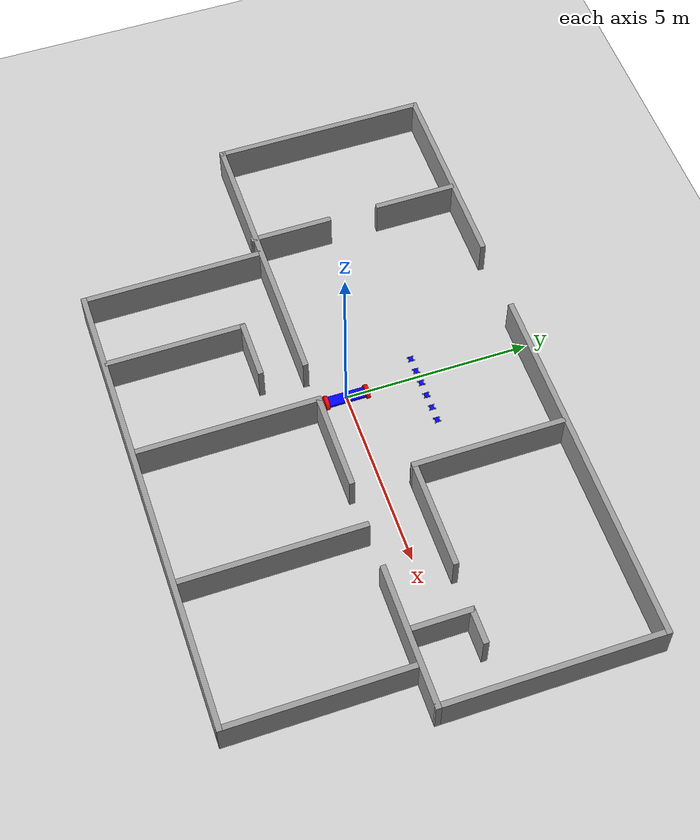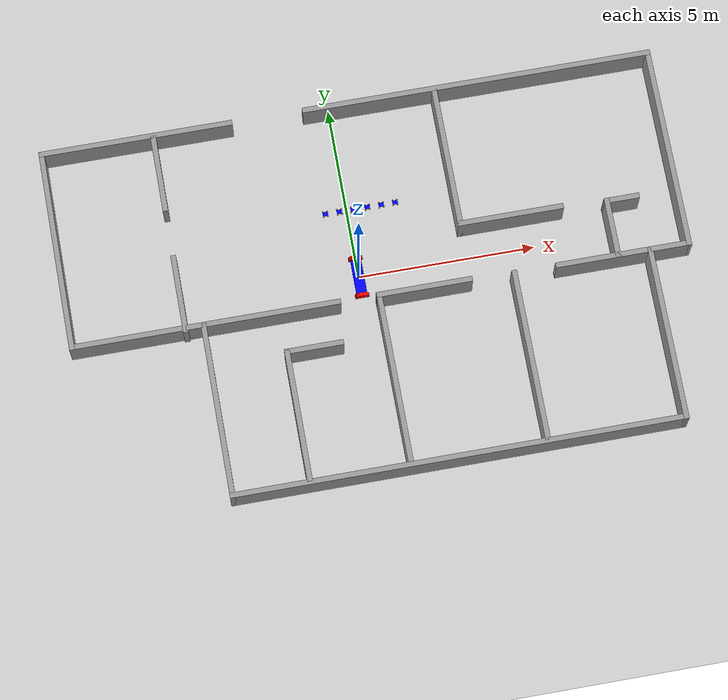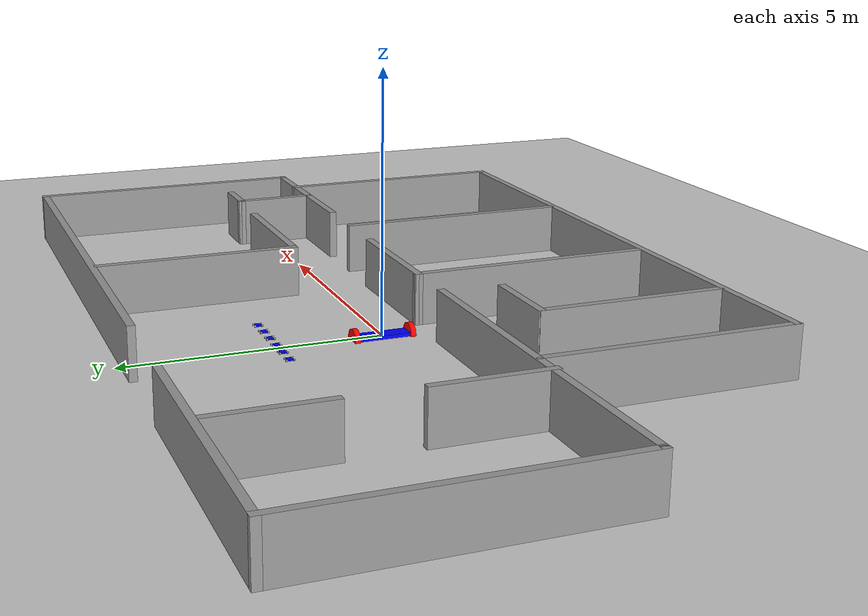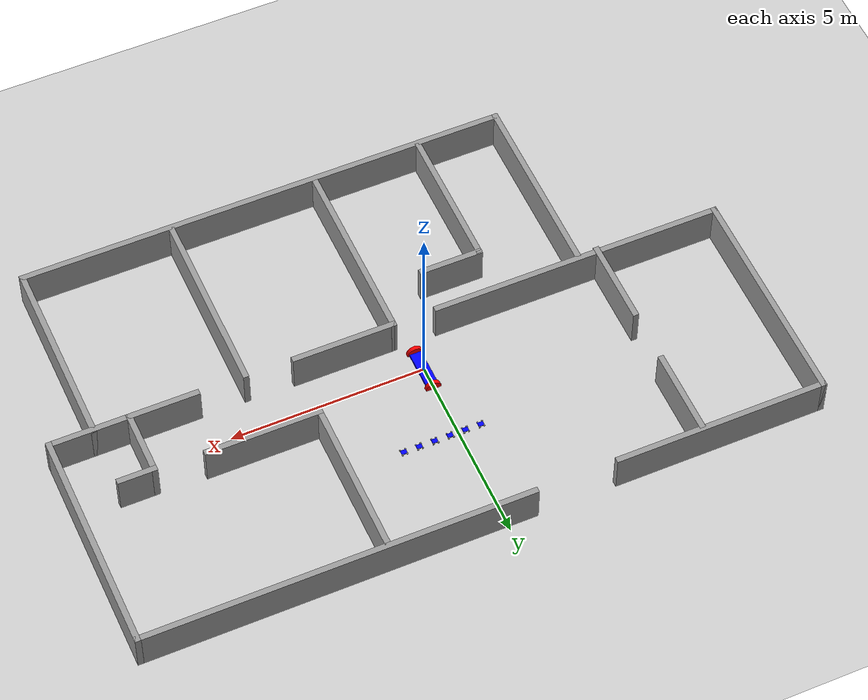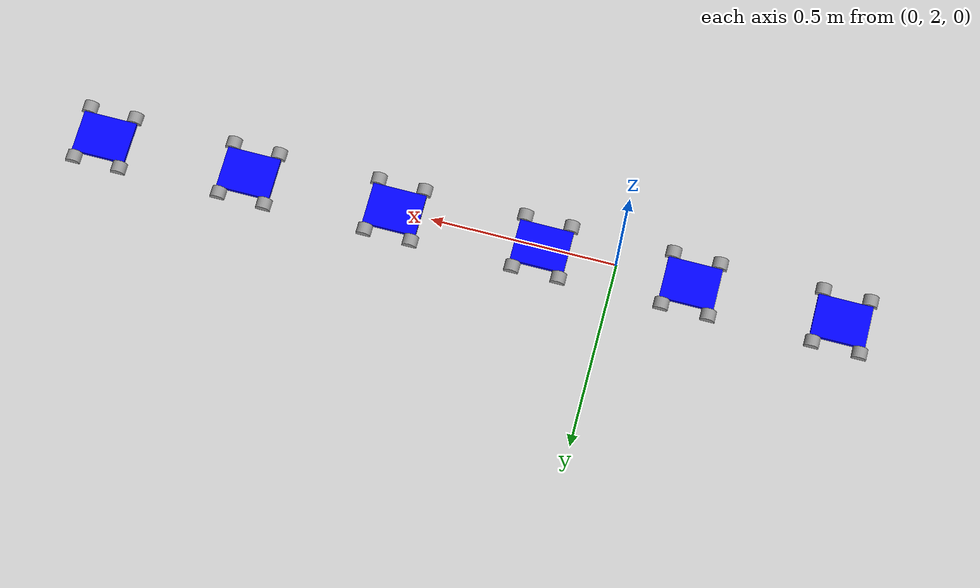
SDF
<sdf version="1.6">
 <world name="default">
  <plugin name="hello" filename="libwelcome_message.so"/>
  <light name="sun" type="directional">
   <pose>0 0 10 0 -0 0</pose>
   <diffuse>0.8 0.8 0.8 1</diffuse>
   <specular>0.2 0.2 0.2 1</specular>
   <attenuation>
    <range>1000</range>
    <constant>0.9</constant>
    <linear>0.01</linear>
    <quadratic>0.001</quadratic>
   </attenuation>
   <direction>-0.5 0.1 -0.9</direction>
  </light>
  <gravity>0 0 -9.8</gravity>
  <magnetic_field>6e-06 2.3e-05 -4.2e-05</magnetic_field>
  <atmosphere type="adiabatic"/>
  <physics name="default_physics" default="0" type="ode">
   <max_step_size>0.001</max_step_size>
   <real_time_factor>1</real_time_factor>
   <real_time_update_rate>1000</real_time_update_rate>
  </physics>
  <scene><ambient>0.4 0.4 0.4 1</ambient><background>0.7 0.7 0.7 1</background><shadows>1</shadows></scene>
  <spherical_coordinates>
   <surface_model>EARTH_WGS84</surface_model>
   <latitude_deg>0</latitude_deg>
   <longitude_deg>0</longitude_deg>
   <elevation>0</elevation>
   <heading_deg>0</heading_deg>
  </spherical_coordinates>
  <include><uri>model://home</uri><pose>0.490005 -0.469645 0 0 -0 0</pose></include>
  <include><uri>model://robot</uri></include>
  <include><uri>model://ground_plane</uri></include>
  <include><uri>model://nanocrawler</uri><name>nanocrawler1</name><pose>-0.6 2 0 0 0 0</pose></include>
  <include><uri>model://nanocrawler</uri><name>nanocrawler2</name><pose>-0.2 2 0 0 0 0</pose></include>
  <include><uri>model://nanocrawler</uri><name>nanocrawler3</name><pose>0.2 2 0 0 0 0</pose></include>
  <include><uri>model://nanocrawler</uri><name>nanocrawler4</name><pose>0.6 2 0 0 0 0</pose></include>
  <include><uri>model://nanocrawler</uri><name>nanocrawler5</name><pose>1 2 0 0 0 0</pose></include>
  <include><uri>model://nanocrawler</uri><name>nanocrawler6</name><pose>1.4 2 0 0 0 0</pose></include>
 </world>
</sdf>

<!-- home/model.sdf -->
<sdf version='1.6'>
  <model name='home'>
    <pose frame=''>-0.127498 -0.471945 0 0 -0 0</pose>
    <link name='Wall_0'>
      <collision name='Wall_0_Collision'>
        <geometry>
          <box>
            <size>5.85 0.15 1.01</size>
          </box>
        </geometry>
        <pose frame=''>0 0 0.505 0 -0 0</pose>
      </collision>
      <visual name='Wall_0_Visual'>
        <pose frame=''>0 0 0.505 0 -0 0</pose>
        <geometry>
          <box>
            <size>5.85 0.15 1.01</size>
          </box>
        </geometry>
        <material>
          <script>
            <uri>file://media/materials/scripts/gazebo.material</uri>
            <name>Gazebo/Grey</name>
          </script>
          <ambient>1 1 1 1</ambient>
        </material>
      </visual>
      <pose frame=''>-8.6775 2.44195 0 0 0 -1.5708</pose>
    </link>
    <link name='Wall_10'>
      <collision name='Wall_10_Collision'>
        <geometry>
          <box>
            <size>3.75 0.15 1.01</size>
          </box>
        </geometry>
        <pose frame=''>0 0 0.505 0 -0 0</pose>
      </collision>
      <visual name='Wall_10_Visual'>
        <pose frame=''>0 0 0.505 0 -0 0</pose>
        <geometry>
          <box>
            <size>3.75 0.15 1.01</size>
          </box>
        </geometry>
        <material>
          <script>
            <uri>file://media/materials/scripts/gazebo.material</uri>
            <name>Gazebo/Grey</name>
          </script>
          <ambient>1 1 1 1</ambient>
        </material>
      </visual>
      <pose frame=''>-2.85846 -3.39925 0 0 -0 1.5708</pose>
    </link>
    <link name='Wall_11'>
      <collision name='Wall_11_Collision'>
        <geometry>
          <box>
            <size>1.65 0.15 1.01</size>
          </box>
        </geometry>
        <pose frame=''>0 0 0.505 0 -0 0</pose>
      </collision>
      <visual name='Wall_11_Visual'>
        <pose frame=''>0 0 0.505 0 -0 0</pose>
        <geometry>
          <box>
            <size>1.65 0.15 1.01</size>
          </box>
        </geometry>
        <material>
          <script>
            <uri>file://media/materials/scripts/gazebo.material</uri>
            <name>Gazebo/Grey</name>
          </script>
          <ambient>1 1 1 1</ambient>
        </material>
      </visual>
      <pose frame=''>-2.10 -1.57 0 0 -0 0</pose>
    </link>
    <link name='Wall_12'>
      <collision name='Wall_12_Collision'>
        <geometry>
          <box>
            <size>4.88874 0.15 1.01</size>
          </box>
        </geometry>
        <pose frame=''>0 0 0.505 0 -0 0</pose>
      </collision>
      <visual name='Wall_12_Visual'>
        <pose frame=''>0 0 0.505 0 -0 0</pose>
        <geometry>
          <box>
            <size>4.88874 0.15 1.01</size>
          </box>
        </geometry>
        <material>
          <script>
            <uri>file://media/materials/scripts/gazebo.material</uri>
            <name>Gazebo/Grey</name>
          </script>
          <ambient>1 1 1 1</ambient>
        </material>
      </visual>
      <pose frame=''>-0.066276 -2.77742 0 0 -0 1.57342</pose>
    </link>
    <link name='Wall_16'>
      <collision name='Wall_16_Collision'>
        <geometry>
          <box>
            <size>4.9 0.15 1.01</size>
          </box>
        </geometry>
        <pose frame=''>0 0 0.505 0 -0 0</pose>
      </collision>
      <visual name='Wall_16_Visual'>
        <pose frame=''>0 0 0.505 0 -0 0</pose>
        <geometry>
          <box>
            <size>4.9 0.15 1.01</size>
          </box>
        </geometry>
        <material>
          <script>
            <uri>file://media/materials/scripts/gazebo.material</uri>
            <name>Gazebo/Grey</name>
          </script>
          <ambient>1 1 1 1</ambient>
        </material>
      </visual>
      <pose frame=''>3.73529 -2.82425 0 0 -0 1.5708</pose>
    </link>
    <link name='Wall_18'>
      <collision name='Wall_18_Collision'>
        <geometry>
          <box>
            <size>3.85 0.15 1.01</size>
          </box>
        </geometry>
        <pose frame=''>0 0 0.505 0 -0 0</pose>
      </collision>
      <visual name='Wall_18_Visual'>
        <pose frame=''>0 0 0.505 0 -0 0</pose>
        <geometry>
          <box>
            <size>3.85 0.15 1.01</size>
          </box>
        </geometry>
        <material>
          <script>
            <uri>file://media/materials/scripts/gazebo.material</uri>
            <name>Gazebo/Grey</name>
          </script>
          <ambient>1 1 1 1</ambient>
        </material>
      </visual>
      <pose frame=''>6.82709 -0.44195 0 0 -0 0</pose>
    </link>
    <link name='Wall_2'>
      <collision name='Wall_2_Collision'>
        <geometry>
          <box>
            <size>7.6 0.15 1.01</size>
          </box>
        </geometry>
        <pose frame=''>0 0 0.505 0 -0 0</pose>
      </collision>
      <visual name='Wall_2_Visual'>
        <pose frame=''>0 0 0.505 0 -0 0</pose>
        <geometry>
          <box>
            <size>7.6 0.15 1.01</size>
          </box>
        </geometry>
        <material>
          <script>
            <uri>file://media/materials/scripts/gazebo.material</uri>
            <name>Gazebo/Grey</name>
          </script>
          <ambient>1 1 1 1</ambient>
        </material>
      </visual>
      <pose frame=''>-4.9525 -0.408055 0 0 -0 0</pose>
    </link>
    <link name='Wall_20'>
      <collision name='Wall_20_Collision'>
        <geometry>
          <box>
            <size>5.8839 0.15 1.01</size>
          </box>
        </geometry>
        <pose frame=''>0 0 0.505 0 -0 0</pose>
      </collision>
      <visual name='Wall_20_Visual'>
        <pose frame=''>0 0 0.505 0 -0 0</pose>
        <geometry>
          <box>
            <size>5.8839 0.15 1.01</size>
          </box>
        </geometry>
        <material>
          <script>
            <uri>file://media/materials/scripts/gazebo.material</uri>
            <name>Gazebo/Grey</name>
          </script>
          <ambient>1 1 1 1</ambient>
        </material>
      </visual>
      <pose frame=''>8.67729 2.425 0 0 -0 1.57072</pose>
    </link>
    <link name='Wall_22'>
      <collision name='Wall_22_Collision'>
        <geometry>
          <box>
            <size>10 0.15 1.01</size>
          </box>
        </geometry>
        <pose frame=''>0 0 0.505 0 -0 0</pose>
      </collision>
      <visual name='Wall_22_Visual'>
        <pose frame=''>0 0 0.505 0 -0 0</pose>
        <geometry>
          <box>
            <size>10 0.15 1.01</size>
          </box>
        </geometry>
        <material>
          <script>
            <uri>file://media/materials/scripts/gazebo.material</uri>
            <name>Gazebo/Grey</name>
          </script>
          <ambient>1 1 1 1</ambient>
        </material>
      </visual>
      <pose frame=''>3.7525 5.29195 0 0 -0 3.14159</pose>
    </link>
    <link name='Wall_24'>
      <collision name='Wall_24_Collision'>
        <geometry>
          <box>
            <size>5.5 0.15 1.01</size>
          </box>
        </geometry>
        <pose frame=''>0 0 0.505 0 -0 0</pose>
      </collision>
      <visual name='Wall_24_Visual'>
        <pose frame=''>0 0 0.505 0 -0 0</pose>
        <geometry>
          <box>
            <size>5.5 0.15 1.01</size>
          </box>
        </geometry>
        <material>
          <script>
            <uri>file://media/materials/scripts/gazebo.material</uri>
            <name>Gazebo/Grey</name>
          </script>
          <ambient>1 1 1 1</ambient>
        </material>
      </visual>
      <pose frame=''>-6.0025 5.29195 0 0 -0 0</pose>
    </link>
    <link name='Wall_26'>
      <collision name='Wall_26_Collision'>
        <geometry>
          <box>
            <size>1.75 0.15 1.01</size>
          </box>
        </geometry>
        <pose frame=''>0 0 0.505 0 -0 0</pose>
      </collision>
      <visual name='Wall_26_Visual'>
        <pose frame=''>0 0 0.505 0 -0 0</pose>
        <geometry>
          <box>
            <size>1.75 0.15 1.01</size>
          </box>
        </geometry>
        <material>
          <script>
            <uri>file://media/materials/scripts/gazebo.material</uri>
            <name>Gazebo/Grey</name>
          </script>
          <ambient>1 1 1 1</ambient>
        </material>
      </visual>
      <pose frame=''>6.67166 0.362175 0 0 0 -1.5706</pose>
    </link>
    <link name='Wall_28'>
      <collision name='Wall_28_Collision'>
        <geometry>
          <box>
            <size>1 0.15 1.01</size>
          </box>
        </geometry>
        <pose frame=''>0 0 0.505 0 -0 0</pose>
      </collision>
      <visual name='Wall_28_Visual'>
        <pose frame=''>0 0 0.505 0 -0 0</pose>
        <geometry>
          <box>
            <size>1 0.15 1.01</size>
          </box>
        </geometry>
        <material>
          <script>
            <uri>file://media/materials/scripts/gazebo.material</uri>
            <name>Gazebo/Grey</name>
          </script>
          <ambient>1 1 1 1</ambient>
        </material>
      </visual>
      <pose frame=''>7.0965 1.16195 0 0 -0 0</pose>
    </link>
    <link name='Wall_30'>
      <collision name='Wall_30_Collision'>
        <geometry>
          <box>
            <size>4.1 0.15 1.01</size>
          </box>
        </geometry>
        <pose frame=''>0 0 0.505 0 -0 0</pose>
      </collision>
      <visual name='Wall_30_Visual'>
        <pose frame=''>0 0 0.505 0 -0 0</pose>
        <geometry>
          <box>
            <size>4.1 0.15 1.01</size>
          </box>
        </geometry>
        <material>
          <script>
            <uri>file://media/materials/scripts/gazebo.material</uri>
            <name>Gazebo/Grey</name>
          </script>
          <ambient>1 1 1 1</ambient>
        </material>
      </visual>
      <pose frame=''>2.52218 3.20403 0 0 0 -1.5708</pose>
    </link>
    <link name='Wall_32'>
      <collision name='Wall_32_Collision'>
        <geometry>
          <box>
            <size>3 0.15 1.01</size>
          </box>
        </geometry>
        <pose frame=''>0 0 0.505 0 -0 0</pose>
      </collision>
      <visual name='Wall_32_Visual'>
        <pose frame=''>0 0 0.505 0 -0 0</pose>
        <geometry>
          <box>
            <size>3 0.15 1.01</size>
          </box>
        </geometry>
        <material>
          <script>
            <uri>file://media/materials/scripts/gazebo.material</uri>
            <name>Gazebo/Grey</name>
          </script>
          <ambient>1 1 1 1</ambient>
        </material>
      </visual>
      <pose frame=''>3.94719 1.22903 0 0 -0 0</pose>
    </link>
    <link name='Wall_34'>
      <collision name='Wall_34_Collision'>
        <geometry>
          <box>
            <size>2.25 0.15 1.01</size>
          </box>
        </geometry>
        <pose frame=''>0 0 0.505 0 -0 0</pose>
      </collision>
      <visual name='Wall_34_Visual'>
        <pose frame=''>0 0 0.505 0 -0 0</pose>
        <geometry>
          <box>
            <size>2.25 0.15 1.01</size>
          </box>
        </geometry>
        <material>
          <script>
            <uri>file://media/materials/scripts/gazebo.material</uri>
            <name>Gazebo/Grey</name>
          </script>
          <ambient>1 1 1 1</ambient>
        </material>
      </visual>
      <pose frame=''>-5.5115 4.15595 0 0 0 -1.5708</pose>
    </link>
    <link name='Wall_36'>
      <collision name='Wall_36_Collision'>
        <geometry>
          <box>
            <size>2.25 0.15 1.01</size>
          </box>
        </geometry>
        <pose frame=''>0 0 0.505 0 -0 0</pose>
      </collision>
      <visual name='Wall_36_Visual'>
        <pose frame=''>0 0 0.505 0 -0 0</pose>
        <geometry>
          <box>
            <size>2.25 0.15 1.01</size>
          </box>
        </geometry>
        <material>
          <script>
            <uri>file://media/materials/scripts/gazebo.material</uri>
            <name>Gazebo/Grey</name>
          </script>
          <ambient>1 1 1 1</ambient>
        </material>
      </visual>
      <pose frame=''>-5.51107 0.589792 0 0 -0 1.5708</pose>
    </link>
    <link name='Wall_4'>
      <collision name='Wall_4_Collision'>
        <geometry>
          <box>
            <size>2.7 0.15 1.01</size>
          </box>
        </geometry>
        <pose frame=''>0 0 0.505 0 -0 0</pose>
      </collision>
      <visual name='Wall_4_Visual'>
        <pose frame=''>0 0 0.505 0 -0 0</pose>
        <geometry>
          <box>
            <size>2.7 0.15 1.01</size>
          </box>
        </geometry>
        <material>
          <script>
            <uri>file://media/materials/scripts/gazebo.material</uri>
            <name>Gazebo/Grey</name>
          </script>
          <ambient>1 1 1 1</ambient>
        </material>
      </visual>
      <pose frame=''>1.2025 -0.408055 0 0 -0 0</pose>
    </link>
    <link name='Wall_6'>
      <collision name='Wall_6_Collision'>
        <geometry>
          <box>
            <size>5 0.15 1.01</size>
          </box>
        </geometry>
        <pose frame=''>0 0 0.505 0 -0 0</pose>
      </collision>
      <visual name='Wall_6_Visual'>
        <pose frame=''>0 0 0.505 0 -0 0</pose>
        <geometry>
          <box>
            <size>5 0.15 1.01</size>
          </box>
        </geometry>
        <material>
          <script>
            <uri>file://media/materials/scripts/gazebo.material</uri>
            <name>Gazebo/Grey</name>
          </script>
          <ambient>1 1 1 1</ambient>
        </material>
      </visual>
      <pose frame=''>-5 -2.86695 0 0 0 -1.5708</pose>
    </link>
    <link name='Wall_7'>
      <collision name='Wall_7_Collision'>
        <geometry>
          <box>
            <size>12.73 0.15 1.01</size>
          </box>
        </geometry>
        <pose frame=''>0 0 0.505 0 -0 0</pose>
      </collision>
      <visual name='Wall_7_Visual'>
        <pose frame=''>0 0 0.505 0 -0 0</pose>
        <geometry>
          <box>
            <size>12.73 0.15 1.01</size>
          </box>
        </geometry>
        <material>
          <script>
            <uri>file://media/materials/scripts/gazebo.material</uri>
            <name>Gazebo/Grey</name>
          </script>
          <ambient>1 1 1 1</ambient>
        </material>
      </visual>
      <pose frame=''>1.29 -5.29195 0 0 -0 0</pose>
    </link>
    <link name='Wall_8'>
      <collision name='Wall_8_Collision'>
        <geometry>
          <box>
            <size>5 0.15 1.01</size>
          </box>
        </geometry>
        <pose frame=''>0 0 0.505 0 -0 0</pose>
      </collision>
      <visual name='Wall_8_Visual'>
        <pose frame=''>0 0 0.505 0 -0 0</pose>
        <geometry>
          <box>
            <size>5 0.15 1.01</size>
          </box>
        </geometry>
        <material>
          <script>
            <uri>file://media/materials/scripts/gazebo.material</uri>
            <name>Gazebo/Grey</name>
          </script>
          <ambient>1 1 1 1</ambient>
        </material>
      </visual>
      <pose frame=''>7.58098 -2.86695 0 0 -0 1.5708</pose>
    </link>
    <static>1</static>
  </model>
</sdf>

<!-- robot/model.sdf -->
<sdf version='1.6'>
  <model name='robot'>
    <link name='link_3'>
      <pose frame=''>0 0 0 -0 -0 -0</pose>
      <inertial>
        <mass>1</mass>
        <inertia>
          <ixx>0.166667</ixx>
          <ixy>0</ixy>
          <ixz>0</ixz>
          <iyy>0.166667</iyy>
          <iyz>0</iyz>
          <izz>0.166667</izz>
        </inertia>
        <pose frame=''>0 0 0 0 -0 0</pose>
      </inertial>
      <self_collide>0</self_collide>
      <kinematic>0</kinematic>
      <gravity>1</gravity>
      <visual name='visual'>
        <pose frame=''>0 0 0 0 -0 0</pose>
        <geometry>
          <box>
            <size>0.3 1 0.1</size>
          </box>
        </geometry>
        <material>
          <lighting>1</lighting>
          <script>
            <uri>file://media/materials/scripts/gazebo.material</uri>
            <name>Gazebo/Grey</name>
          </script>
          <shader type='pixel'>
            <normal_map>__default__</normal_map>
          </shader>
          <ambient>0 0 1 1</ambient>
          <diffuse>0.7 0.7 0.7 1</diffuse>
          <specular>0.01 0.01 0.01 1</specular>
          <emissive>0 0 0 1</emissive>
        </material>
        <transparency>0</transparency>
        <cast_shadows>1</cast_shadows>
      </visual>
      <collision name='collision'>
        <laser_retro>0</laser_retro>
        <max_contacts>10</max_contacts>
        <pose frame=''>0 0 0 0 -0 0</pose>
        <geometry>
          <box>
            <size>0.3 1 0.1</size>
          </box>
        </geometry>
        <surface>
          <friction>
            <ode>
              <mu>1</mu>
              <mu2>1</mu2>
              <fdir1>0 0 0</fdir1>
              <slip1>0</slip1>
              <slip2>0</slip2>
            </ode>
            <torsional>
              <coefficient>1</coefficient>
              <patch_radius>0</patch_radius>
              <surface_radius>0</surface_radius>
              <use_patch_radius>1</use_patch_radius>
              <ode>
                <slip>0</slip>
              </ode>
            </torsional>
          </friction>
          <bounce>
            <restitution_coefficient>0</restitution_coefficient>
            <threshold>1e+06</threshold>
          </bounce>
          <contact>
            <collide_without_contact>0</collide_without_contact>
            <collide_without_contact_bitmask>1</collide_without_contact_bitmask>
            <collide_bitmask>1</collide_bitmask>
            <ode>
              <soft_cfm>0</soft_cfm>
              <soft_erp>0.2</soft_erp>
              <kp>1e+13</kp>
              <kd>1</kd>
              <max_vel>0.01</max_vel>
              <min_depth>0</min_depth>
            </ode>
            <bullet>
              <split_impulse>1</split_impulse>
              <split_impulse_penetration_threshold>-0.01</split_impulse_penetration_threshold>
              <soft_cfm>0</soft_cfm>
              <soft_erp>0.2</soft_erp>
              <kp>1e+13</kp>
              <kd>1</kd>
            </bullet>
          </contact>
        </surface>
      </collision>
    </link>
    <link name='link_4'>
      <pose frame=''>-0 -0.550019 0 1.5707 -0 0</pose>
      <inertial>
        <mass>1</mass>
        <inertia>
          <ixx>0.145833</ixx>
          <ixy>0</ixy>
          <ixz>0</ixz>
          <iyy>0.145833</iyy>
          <iyz>0</iyz>
          <izz>0.125</izz>
        </inertia>
        <pose frame=''>0 0 0 0 -0 0</pose>
      </inertial>
      <self_collide>0</self_collide>
      <kinematic>0</kinematic>
      <visual name='visual'>
        <pose frame=''>0 0 0 0 -0 0</pose>
        <geometry>
          <cylinder>
            <radius>0.2</radius>
            <length>0.1</length>
          </cylinder>
        </geometry>
        <material>
          <lighting>1</lighting>
          <script>
            <uri>file://media/materials/scripts/gazebo.material</uri>
            <name>Gazebo/Grey</name>
          </script>
          <shader type='pixel'>
            <normal_map>__default__</normal_map>
          </shader>
          <ambient>1 0 0 1</ambient>
          <diffuse>0.7 0.7 0.7 1</diffuse>
          <specular>0.01 0.01 0.01 1</specular>
          <emissive>0 0 0 1</emissive>
        </material>
        <transparency>0</transparency>
        <cast_shadows>1</cast_shadows>
      </visual>
      <collision name='collision'>
        <laser_retro>0</laser_retro>
        <max_contacts>10</max_contacts>
        <pose frame=''>0 0 0 0 -0 0</pose>
        <geometry>
          <cylinder>
            <radius>0.2</radius>
            <length>0.1</length>
          </cylinder>
        </geometry>
        <surface>
          <friction>
            <ode>
              <mu>1</mu>
              <mu2>1</mu2>
              <fdir1>0 0 0</fdir1>
              <slip1>0</slip1>
              <slip2>0</slip2>
            </ode>
            <torsional>
              <coefficient>1</coefficient>
              <patch_radius>0</patch_radius>
              <surface_radius>0</surface_radius>
              <use_patch_radius>1</use_patch_radius>
              <ode>
                <slip>0</slip>
              </ode>
            </torsional>
          </friction>
          <bounce>
            <restitution_coefficient>0</restitution_coefficient>
            <threshold>1e+06</threshold>
          </bounce>
          <contact>
            <collide_without_contact>0</collide_without_contact>
            <collide_without_contact_bitmask>1</collide_without_contact_bitmask>
            <collide_bitmask>1</collide_bitmask>
            <ode>
              <soft_cfm>0</soft_cfm>
              <soft_erp>0.2</soft_erp>
              <kp>1e+13</kp>
              <kd>1</kd>
              <max_vel>0.01</max_vel>
              <min_depth>0</min_depth>
            </ode>
            <bullet>
              <split_impulse>1</split_impulse>
              <split_impulse_penetration_threshold>-0.01</split_impulse_penetration_threshold>
              <soft_cfm>0</soft_cfm>
              <soft_erp>0.2</soft_erp>
              <kp>1e+13</kp>
              <kd>1</kd>
            </bullet>
          </contact>
        </surface>
      </collision>
    </link>
    <link name='link_4_clone'>
      <pose frame=''>0 0.550019 -0 1.5707 -0 0</pose>
      <inertial>
        <mass>1</mass>
        <inertia>
          <ixx>0.145833</ixx>
          <ixy>0</ixy>
          <ixz>0</ixz>
          <iyy>0.145833</iyy>
          <iyz>0</iyz>
          <izz>0.125</izz>
        </inertia>
        <pose frame=''>0 0 0 0 -0 0</pose>
      </inertial>
      <self_collide>0</self_collide>
      <kinematic>0</kinematic>
      <visual name='visual'>
        <pose frame=''>0 0 0 0 -0 0</pose>
        <geometry>
          <cylinder>
            <radius>0.2</radius>
            <length>0.1</length>
          </cylinder>
        </geometry>
        <material>
          <lighting>1</lighting>
          <script>
            <uri>file://media/materials/scripts/gazebo.material</uri>
            <name>Gazebo/Grey</name>
          </script>
          <shader type='pixel'>
            <normal_map>__default__</normal_map>
          </shader>
          <ambient>1 0 0 1</ambient>
          <diffuse>0.7 0.7 0.7 1</diffuse>
          <specular>0.01 0.01 0.01 1</specular>
          <emissive>0 0 0 1</emissive>
        </material>
        <transparency>0</transparency>
        <cast_shadows>1</cast_shadows>
      </visual>
      <collision name='collision'>
        <laser_retro>0</laser_retro>
        <max_contacts>10</max_contacts>
        <pose frame=''>0 0 0 0 -0 0</pose>
        <geometry>
          <cylinder>
            <radius>0.2</radius>
            <length>0.1</length>
          </cylinder>
        </geometry>
        <surface>
          <friction>
            <ode>
              <mu>1</mu>
              <mu2>1</mu2>
              <fdir1>0 0 0</fdir1>
              <slip1>0</slip1>
              <slip2>0</slip2>
            </ode>
            <torsional>
              <coefficient>1</coefficient>
              <patch_radius>0</patch_radius>
              <surface_radius>0</surface_radius>
              <use_patch_radius>1</use_patch_radius>
              <ode>
                <slip>0</slip>
              </ode>
            </torsional>
          </friction>
          <bounce>
            <restitution_coefficient>0</restitution_coefficient>
            <threshold>1e+06</threshold>
          </bounce>
          <contact>
            <collide_without_contact>0</collide_without_contact>
            <collide_without_contact_bitmask>1</collide_without_contact_bitmask>
            <collide_bitmask>1</collide_bitmask>
            <ode>
              <soft_cfm>0</soft_cfm>
              <soft_erp>0.2</soft_erp>
              <kp>1e+13</kp>
              <kd>1</kd>
              <max_vel>0.01</max_vel>
              <min_depth>0</min_depth>
            </ode>
            <bullet>
              <split_impulse>1</split_impulse>
              <split_impulse_penetration_threshold>-0.01</split_impulse_penetration_threshold>
              <soft_cfm>0</soft_cfm>
              <soft_erp>0.2</soft_erp>
              <kp>1e+13</kp>
              <kd>1</kd>
            </bullet>
          </contact>
        </surface>
      </collision>
    </link>
    <joint name='Joint_Left_Wheel' type='revolute'>
      <parent>link_3</parent>
      <child>link_4</child>
      <pose frame=''>0 0 0 0 -0 0</pose>
      <axis>
        <xyz>0 0 1</xyz>
        <use_parent_model_frame>0</use_parent_model_frame>
        <limit>
          <lower>-1.79769e+308</lower>
          <upper>1.79769e+308</upper>
          <effort>-1</effort>
          <velocity>-1</velocity>
        </limit>
        <dynamics>
          <spring_reference>0</spring_reference>
          <spring_stiffness>0</spring_stiffness>
          <damping>0</damping>
          <friction>0</friction>
        </dynamics>
      </axis>
      <physics>
        <ode>
          <limit>
            <cfm>0</cfm>
            <erp>0.2</erp>
          </limit>
          <suspension>
            <cfm>0</cfm>
            <erp>0.2</erp>
          </suspension>
        </ode>
      </physics>
    </joint>
    <joint name='Joint_Right_Wheel' type='revolute'>
      <parent>link_3</parent>
      <child>link_4_clone</child>
      <pose frame=''>0 0 0 0 -0 0</pose>
      <axis>
        <xyz>0 0 1</xyz>
        <use_parent_model_frame>0</use_parent_model_frame>
        <limit>
          <lower>-1.79769e+308</lower>
          <upper>1.79769e+308</upper>
          <effort>-1</effort>
          <velocity>-1</velocity>
        </limit>
        <dynamics>
          <spring_reference>0</spring_reference>
          <spring_stiffness>0</spring_stiffness>
          <damping>0</damping>
          <friction>0</friction>
        </dynamics>
      </axis>
      <physics>
        <ode>
          <limit>
            <cfm>0</cfm>
            <erp>0.2</erp>
          </limit>
          <suspension>
            <cfm>0</cfm>
            <erp>0.2</erp>
          </suspension>
        </ode>
      </physics>
    </joint>
    <static>0</static>
    <allow_auto_disable>1</allow_auto_disable>
  </model>
</sdf>

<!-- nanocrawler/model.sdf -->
<sdf version='1.6'>
  <model name='nanocrawler'>
    <link name='chassis'>
      <pose frame=''>0 0 0.0 0 -0 0</pose>
      <inertial>
        <mass>1</mass>
        <inertia>
          <ixx>0.166667</ixx>
          <ixy>0</ixy>
          <ixz>0</ixz>
          <iyy>0.166667</iyy>
          <iyz>0</iyz>
          <izz>0.166667</izz>
        </inertia>
        <pose frame=''>0 0 0 0 -0 0</pose>
      </inertial>
      <gravity>1</gravity>
      <self_collide>0</self_collide>
      <kinematic>0</kinematic>
      <visual name='visual'>
        <pose frame=''>0 0 0 0 -0 0</pose>
        <geometry>
          <box>
            <size>0.145 0.115 0.02</size>
          </box>
        </geometry>
        <material>
          <lighting>1</lighting>
          <script>
            <uri>file://media/materials/scripts/gazebo.material</uri>
            <name>Gazebo/Grey</name>
          </script>
          <shader type='pixel'>
            <normal_map>__default__</normal_map>
          </shader>
          <ambient>0 0 1 1</ambient>
          <diffuse>0.7 0.7 0.7 1</diffuse>
          <specular>0.01 0.01 0.01 1</specular>
          <emissive>0 0 0 1</emissive>
        </material>
        <transparency>0</transparency>
        <cast_shadows>1</cast_shadows>
      </visual>
      <collision name='collision'>
        <laser_retro>0</laser_retro>
        <max_contacts>10</max_contacts>
        <pose frame=''>0 0 0 0 -0 0</pose>
        <geometry>
          <box>
            <size>0.145 0.115 0.02</size>
          </box>
        </geometry>
        <surface>
          <friction>
            <ode>
              <mu>1</mu>
              <mu2>1</mu2>
              <fdir1>0 0 0</fdir1>
              <slip1>0</slip1>
              <slip2>0</slip2>
            </ode>
            <torsional>
              <coefficient>1</coefficient>
              <patch_radius>0</patch_radius>
              <surface_radius>0</surface_radius>
              <use_patch_radius>1</use_patch_radius>
              <ode>
                <slip>0</slip>
              </ode>
            </torsional>
          </friction>
          <bounce>
            <restitution_coefficient>0</restitution_coefficient>
            <threshold>1e+06</threshold>
          </bounce>
          <contact>
            <collide_without_contact>0</collide_without_contact>
            <collide_without_contact_bitmask>1</collide_without_contact_bitmask>
            <collide_bitmask>1</collide_bitmask>
            <ode>
              <soft_cfm>0</soft_cfm>
              <soft_erp>0.2</soft_erp>
              <kp>1e+13</kp>
              <kd>1</kd>
              <max_vel>0.01</max_vel>
              <min_depth>0</min_depth>
            </ode>
            <bullet>
              <split_impulse>1</split_impulse>
              <split_impulse_penetration_threshold>-0.01</split_impulse_penetration_threshold>
              <soft_cfm>0</soft_cfm>
              <soft_erp>0.2</soft_erp>
              <kp>1e+13</kp>
              <kd>1</kd>
            </bullet>
          </contact>
        </surface>
      </collision>
    </link>

    <link name='left_front_wheel'>
      <pose frame=''>0.0625 0.0725 0 1.5708 -0 0</pose>
      <inertial>
        <mass>1</mass>
        <inertia>
          <ixx>0.145833</ixx>
          <ixy>0</ixy>
          <ixz>0</ixz>
          <iyy>0.145833</iyy>
          <iyz>0</iyz>
          <izz>0.125</izz>
        </inertia>
        <pose frame=''>0 0 0 0 -0 0</pose>
      </inertial>
      <gravity>1</gravity>
      <self_collide>0</self_collide>
      <kinematic>0</kinematic>
      <visual name='visual'>
        <pose frame=''>0 0 0 0 -0 0</pose>
        <geometry>
          <cylinder>
            <radius>0.02</radius>
            <length>0.03</length>
          </cylinder>
        </geometry>
        <material>
          <lighting>1</lighting>
          <script>
            <uri>file://media/materials/scripts/gazebo.material</uri>
            <name>Gazebo/Grey</name>
          </script>
          <shader type='pixel'>
            <normal_map>__default__</normal_map>
          </shader>
          <ambient>0.1 0.1 0.1 1</ambient>
          <diffuse>0.7 0.7 0.7 1</diffuse>
          <specular>0.01 0.01 0.01 1</specular>
          <emissive>0 0 0 1</emissive>
        </material>
        <transparency>0</transparency>
        <cast_shadows>1</cast_shadows>
      </visual>
      <collision name='collision'>
        <laser_retro>0</laser_retro>
        <max_contacts>10</max_contacts>
        <pose frame=''>0 0 0 0 -0 0</pose>
        <geometry>
          <cylinder>
            <radius>0.02</radius>
            <length>0.03</length>
          </cylinder>
        </geometry>
        <surface>
          <friction>
            <ode>
              <mu>1</mu>
              <mu2>1</mu2>
              <fdir1>0 0 0</fdir1>
              <slip1>0</slip1>
              <slip2>0</slip2>
            </ode>
            <torsional>
              <coefficient>1</coefficient>
              <patch_radius>0</patch_radius>
              <surface_radius>0</surface_radius>
              <use_patch_radius>1</use_patch_radius>
              <ode>
                <slip>0</slip>
              </ode>
            </torsional>
          </friction>
          <bounce>
            <restitution_coefficient>0</restitution_coefficient>
            <threshold>1e+06</threshold>
          </bounce>
          <contact>
            <collide_without_contact>0</collide_without_contact>
            <collide_without_contact_bitmask>1</collide_without_contact_bitmask>
            <collide_bitmask>1</collide_bitmask>
            <ode>
              <soft_cfm>0</soft_cfm>
              <soft_erp>0.2</soft_erp>
              <kp>1e+13</kp>
              <kd>1</kd>
              <max_vel>0.01</max_vel>
              <min_depth>0</min_depth>
            </ode>
            <bullet>
              <split_impulse>1</split_impulse>
              <split_impulse_penetration_threshold>-0.01</split_impulse_penetration_threshold>
              <soft_cfm>0</soft_cfm>
              <soft_erp>0.2</soft_erp>
              <kp>1e+13</kp>
              <kd>1</kd>
            </bullet>
          </contact>
        </surface>
      </collision>
    </link>
    <joint type="revolute" name="left_front_wheel_hinge">
        <pose>-0 0 -0 0 0 0</pose>
        <child>left_front_wheel</child>
        <parent>chassis</parent>
        <axis>
          <xyz>0 0 1</xyz>
        </axis>
      </joint>

    <link name='right_front_wheel'>
      <pose frame=''>0.0625 -0.0725 0 1.5708 -0 0</pose>
      <inertial>
        <mass>1</mass>
        <inertia>
          <ixx>0.145833</ixx>
          <ixy>0</ixy>
          <ixz>0</ixz>
          <iyy>0.145833</iyy>
          <iyz>0</iyz>
          <izz>0.125</izz>
        </inertia>
        <pose frame=''>0 0 0 0 -0 0</pose>
      </inertial>
      <gravity>1</gravity>
      <self_collide>0</self_collide>
      <kinematic>0</kinematic>
      <visual name='visual'>
        <pose frame=''>0 0 0 0 -0 0</pose>
        <geometry>
          <cylinder>
            <radius>0.02</radius>
            <length>0.03</length>
          </cylinder>
        </geometry>
        <material>
          <lighting>1</lighting>
          <script>
            <uri>file://media/materials/scripts/gazebo.material</uri>
            <name>Gazebo/Grey</name>
          </script>
          <shader type='pixel'>
            <normal_map>__default__</normal_map>
          </shader>
          <ambient>0.1 0.1 0.1 1</ambient>
          <diffuse>0.7 0.7 0.7 1</diffuse>
          <specular>0.01 0.01 0.01 1</specular>
          <emissive>0 0 0 1</emissive>
        </material>
        <transparency>0</transparency>
        <cast_shadows>1</cast_shadows>
      </visual>
      <collision name='collision'>
        <laser_retro>0</laser_retro>
        <max_contacts>10</max_contacts>
        <pose frame=''>0 0 0 0 -0 0</pose>
        <geometry>
          <cylinder>
            <radius>0.02</radius>
            <length>0.03</length>
          </cylinder>
        </geometry>
        <surface>
          <friction>
            <ode>
              <mu>1</mu>
              <mu2>1</mu2>
              <fdir1>0 0 0</fdir1>
              <slip1>0</slip1>
              <slip2>0</slip2>
            </ode>
            <torsional>
              <coefficient>1</coefficient>
              <patch_radius>0</patch_radius>
              <surface_radius>0</surface_radius>
              <use_patch_radius>1</use_patch_radius>
              <ode>
                <slip>0</slip>
              </ode>
            </torsional>
          </friction>
          <bounce>
            <restitution_coefficient>0</restitution_coefficient>
            <threshold>1e+06</threshold>
          </bounce>
          <contact>
            <collide_without_contact>0</collide_without_contact>
            <collide_without_contact_bitmask>1</collide_without_contact_bitmask>
            <collide_bitmask>1</collide_bitmask>
            <ode>
              <soft_cfm>0</soft_cfm>
              <soft_erp>0.2</soft_erp>
              <kp>1e+13</kp>
              <kd>1</kd>
              <max_vel>0.01</max_vel>
              <min_depth>0</min_depth>
            </ode>
            <bullet>
              <split_impulse>1</split_impulse>
              <split_impulse_penetration_threshold>-0.01</split_impulse_penetration_threshold>
              <soft_cfm>0</soft_cfm>
              <soft_erp>0.2</soft_erp>
              <kp>1e+13</kp>
              <kd>1</kd>
            </bullet>
          </contact>
        </surface>
      </collision>
    </link>
    <joint type="revolute" name="right_front_wheel_hinge">
        <pose>-0 0 -0 0 0 0</pose>
        <child>right_front_wheel</child>
        <parent>chassis</parent>
        <axis>
          <xyz>0 0 1</xyz>
        </axis>
      </joint>

    <link name='left_rear_wheel'>
      <pose frame=''>-0.0625 0.0725 0 1.5708 -0 0</pose>
      <inertial>
        <mass>1</mass>
        <inertia>
          <ixx>0.145833</ixx>
          <ixy>0</ixy>
          <ixz>0</ixz>
          <iyy>0.145833</iyy>
          <iyz>0</iyz>
          <izz>0.125</izz>
        </inertia>
        <pose frame=''>0 0 0 0 -0 0</pose>
      </inertial>
      <gravity>1</gravity>
      <self_collide>0</self_collide>
      <kinematic>0</kinematic>
      <visual name='visual'>
        <pose frame=''>0 0 0 0 -0 0</pose>
        <geometry>
          <cylinder>
            <radius>0.02</radius>
            <length>0.03</length>
          </cylinder>
        </geometry>
        <material>
          <lighting>1</lighting>
          <script>
            <uri>file://media/materials/scripts/gazebo.material</uri>
            <name>Gazebo/Grey</name>
          </script>
          <shader type='pixel'>
            <normal_map>__default__</normal_map>
          </shader>
          <ambient>0.1 0.1 0.1 1</ambient>
          <diffuse>0.7 0.7 0.7 1</diffuse>
          <specular>0.01 0.01 0.01 1</specular>
          <emissive>0 0 0 1</emissive>
        </material>
        <transparency>0</transparency>
        <cast_shadows>1</cast_shadows>
      </visual>
      <collision name='collision'>
        <laser_retro>0</laser_retro>
        <max_contacts>10</max_contacts>
        <pose frame=''>0 0 0 0 -0 0</pose>
        <geometry>
          <cylinder>
            <radius>0.02</radius>
            <length>0.03</length>
          </cylinder>
        </geometry>
        <surface>
          <friction>
            <ode>
              <mu>1</mu>
              <mu2>1</mu2>
              <fdir1>0 0 0</fdir1>
              <slip1>0</slip1>
              <slip2>0</slip2>
            </ode>
            <torsional>
              <coefficient>1</coefficient>
              <patch_radius>0</patch_radius>
              <surface_radius>0</surface_radius>
              <use_patch_radius>1</use_patch_radius>
              <ode>
                <slip>0</slip>
              </ode>
            </torsional>
          </friction>
          <bounce>
            <restitution_coefficient>0</restitution_coefficient>
            <threshold>1e+06</threshold>
          </bounce>
          <contact>
            <collide_without_contact>0</collide_without_contact>
            <collide_without_contact_bitmask>1</collide_without_contact_bitmask>
            <collide_bitmask>1</collide_bitmask>
            <ode>
              <soft_cfm>0</soft_cfm>
              <soft_erp>0.2</soft_erp>
              <kp>1e+13</kp>
              <kd>1</kd>
              <max_vel>0.01</max_vel>
              <min_depth>0</min_depth>
            </ode>
            <bullet>
              <split_impulse>1</split_impulse>
              <split_impulse_penetration_threshold>-0.01</split_impulse_penetration_threshold>
              <soft_cfm>0</soft_cfm>
              <soft_erp>0.2</soft_erp>
              <kp>1e+13</kp>
              <kd>1</kd>
            </bullet>
          </contact>
        </surface>
      </collision>
    </link>
    <joint type="revolute" name="left_rear_wheel_hinge">
        <pose>-0 0 -0 0 0 0</pose>
        <child>left_rear_wheel</child>
        <parent>chassis</parent>
        <axis>
          <xyz>0 0 1</xyz>
        </axis>
      </joint>

    <link name='right_rear_wheel'>
      <pose frame=''>-0.0625 -0.0725 0 1.5708 -0 0</pose>
      <inertial>
        <mass>1</mass>
        <inertia>
          <ixx>0.145833</ixx>
          <ixy>0</ixy>
          <ixz>0</ixz>
          <iyy>0.145833</iyy>
          <iyz>0</iyz>
          <izz>0.125</izz>
        </inertia>
        <pose frame=''>0 0 0 0 -0 0</pose>
      </inertial>
      <gravity>1</gravity>
      <self_collide>0</self_collide>
      <kinematic>0</kinematic>
      <visual name='visual'>
        <pose frame=''>0 0 0 0 -0 0</pose>
        <geometry>
          <cylinder>
            <radius>0.02</radius>
            <length>0.03</length>
          </cylinder>
        </geometry>
        <material>
          <lighting>1</lighting>
          <script>
            <uri>file://media/materials/scripts/gazebo.material</uri>
            <name>Gazebo/Grey</name>
          </script>
          <shader type='pixel'>
            <normal_map>__default__</normal_map>
          </shader>
          <ambient>0.1 0.1 0.1 1</ambient>
          <diffuse>0.7 0.7 0.7 1</diffuse>
          <specular>0.01 0.01 0.01 1</specular>
          <emissive>0 0 0 1</emissive>
        </material>
        <transparency>0</transparency>
        <cast_shadows>1</cast_shadows>
      </visual>
      <collision name='collision'>
        <laser_retro>0</laser_retro>
        <max_contacts>10</max_contacts>
        <pose frame=''>0 0 0 0 -0 0</pose>
        <geometry>
          <cylinder>
            <radius>0.02</radius>
            <length>0.03</length>
          </cylinder>
        </geometry>
        <surface>
          <friction>
            <ode>
              <mu>1</mu>
              <mu2>1</mu2>
              <fdir1>0 0 0</fdir1>
              <slip1>0</slip1>
              <slip2>0</slip2>
            </ode>
            <torsional>
              <coefficient>1</coefficient>
              <patch_radius>0</patch_radius>
              <surface_radius>0</surface_radius>
              <use_patch_radius>1</use_patch_radius>
              <ode>
                <slip>0</slip>
              </ode>
            </torsional>
          </friction>
          <bounce>
            <restitution_coefficient>0</restitution_coefficient>
            <threshold>1e+06</threshold>
          </bounce>
          <contact>
            <collide_without_contact>0</collide_without_contact>
            <collide_without_contact_bitmask>1</collide_without_contact_bitmask>
            <collide_bitmask>1</collide_bitmask>
            <ode>
              <soft_cfm>0</soft_cfm>
              <soft_erp>0.2</soft_erp>
              <kp>1e+13</kp>
              <kd>1</kd>
              <max_vel>0.01</max_vel>
              <min_depth>0</min_depth>
            </ode>
            <bullet>
              <split_impulse>1</split_impulse>
              <split_impulse_penetration_threshold>-0.01</split_impulse_penetration_threshold>
              <soft_cfm>0</soft_cfm>
              <soft_erp>0.2</soft_erp>
              <kp>1e+13</kp>
              <kd>1</kd>
            </bullet>
          </contact>
        </surface>
      </collision>
    </link>
    <joint type="revolute" name="right_rear_wheel_hinge">
        <pose>-0 0 -0 0 0 0</pose>
        <child>right_rear_wheel</child>
        <parent>chassis</parent>
        <axis>
          <xyz>0 0 1</xyz>
        </axis>
      </joint>
    <static>0</static>
    <allow_auto_disable>1</allow_auto_disable>
  </model>
</sdf>
